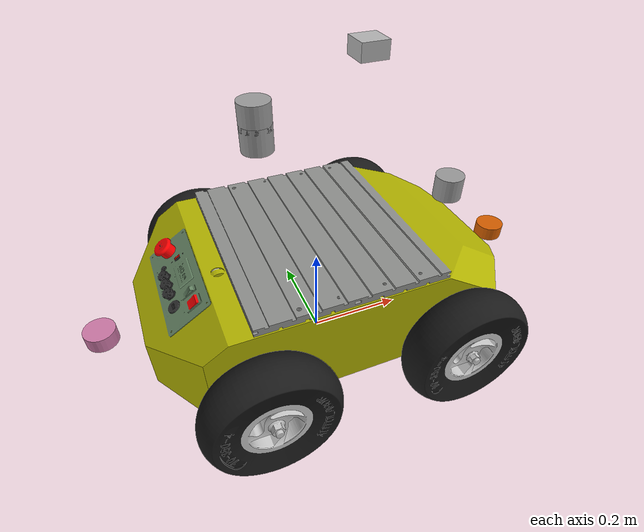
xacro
<?xml version="1.0"?>
	<!-- Revolute-Revolute Manipulator -->
	<robot name="autolabor_pro1" xmlns:xacro="http://www.ros.org/wiki/xacro">

	<!-- Base Link -->
	<link name="base_link">
		<collision>
			<origin xyz="0 0 0.18288" rpy="0 0 0"/>
			<geometry>
				<box size="0.7248 0.4302 0.195"/>
			</geometry>
		</collision>

		<visual>
			<origin xyz="0 0 0" rpy="0 0 0"/>
			<geometry>
				<mesh filename="package://autolabor_description/meshes/pro1_body_color.dae"/>
			</geometry>
		</visual>

	</link>

	<link name="left_front_wheel">
		<collision>
			<origin xyz="0 0 0" rpy="1.5708 0 0"/>
			<geometry>
				<cylinder length="0.0822" radius="0.127"/>
			</geometry>
		</collision>

		<visual>
			<origin xyz="0 0 0" rpy="0 0 0"/>
			<geometry>
				<mesh filename="package://autolabor_description/meshes/pro1_wheel_color.dae"/>
			</geometry>
		</visual>

		<inertial>
			<origin xyz="0 0 0" rpy="0 0 0"/>
			<mass value="1.5"/>
			<inertia ixx="0.013" ixy="0.0" ixz="0.0" iyy="0.0074" iyz="0.0" izz="0.0074"/>
		</inertial>
	</link>

	<link name="left_back_wheel">
		<collision>
			<origin xyz="0 0 0" rpy="1.5708 0 0"/>
			<geometry>
				<cylinder length="0.0822" radius="0.127"/>
			</geometry>
		</collision>

		<visual>
			<origin xyz="0 0 0" rpy="0 0 0"/>
			<geometry>
				<mesh filename="package://autolabor_description/meshes/pro1_wheel_color.dae"/>
			</geometry>
		</visual>

		<inertial>
			<origin xyz="0 0 0" rpy="0 0 0"/>
			<mass value="1.5"/>
			<inertia ixx="0.013" ixy="0.0" ixz="0.0" iyy="0.0074" iyz="0.0" izz="0.0074"/>
		</inertial>
	</link>

	<link name="right_front_wheel">
		<collision>
			<origin xyz="0 0 0" rpy="1.5708 0 0"/>
			<geometry>
				<cylinder length="0.0822" radius="0.127"/>
			</geometry>
		</collision>

		<visual>
			<origin xyz="0 0 0" rpy="0 0 3.1415926535897931"/>
			<geometry>
				<mesh filename="package://autolabor_description/meshes/pro1_wheel_color.dae"/>
			</geometry>
		</visual>

		<inertial>
			<origin xyz="0 0 0" rpy="0 0 3.1415926535897931"/>
			<mass value="1.5"/>
			<inertia ixx="0.013" ixy="0.0" ixz="0.0" iyy="0.0074" iyz="0.0" izz="0.0074"/>
		</inertial>
	</link>

	<link name="right_back_wheel">
		<collision>
			<origin xyz="0 0 0" rpy="1.5708 0 0"/>
			<geometry>
				<cylinder length="0.0822" radius="0.127"/>
			</geometry>
		</collision>

		<visual>
			<origin xyz="0 0 0" rpy="0 0 3.1415926535897931"/>
			<geometry>
				<mesh filename="package://autolabor_description/meshes/pro1_wheel_color.dae"/>
			</geometry>
		</visual>

		<inertial>
			<origin xyz="0 0 0" rpy="0 0 3.1415926535897931"/>
			<mass value="1.5"/>
			<inertia ixx="0.013" ixy="0.0" ixz="0.0" iyy="0.0074" iyz="0.0" izz="0.0074"/>
		</inertial>
	</link>

	<link name="lidar_front">
		<collision>
			<origin xyz="0 0 0" rpy="0 0 0"/>
			<geometry>
				<cylinder length="0.05" radius="0.03"/>
			</geometry>
		</collision>

		<visual>
			<origin xyz="0 0 0" rpy="0 0 0"/>
			<geometry>
				<cylinder length="0.03" radius="0.03"/>
			</geometry>
		</visual>

		<inertial>
			<origin xyz="0 0 0" rpy="0 0 0"/>
			<mass value="0.1"/>
			<inertia ixx="0.0074" ixy="0.0" ixz="0.0" iyy="0.0074" iyz="0.0" izz="0.013"/>
		</inertial>
	</link>

	<link name="lidar_back">
		<collision>
			<origin xyz="0 0 0" rpy="0 0 0"/>
			<geometry>
				<cylinder length="0.03" radius="0.03"/>
			</geometry>
		</collision>

		<visual>
			<origin xyz="0 0 0" rpy="0 0 0"/>
			<geometry>
				<cylinder length="0.03" radius="0.03"/>
			</geometry>
		</visual>

		<inertial>
			<origin xyz="0 0 0" rpy="0 0 0"/>
			<mass value="0.1"/>
			<inertia ixx="0.0074" ixy="0.0" ixz="0.0" iyy="0.0074" iyz="0.0" izz="0.013"/>
		</inertial>
	</link>

	<link name="tag">
		<collision>
			<origin xyz="0 0 0" rpy="0 0 0"/>
			<geometry>
				<box size="0.05 0.05 0.03"/>
			</geometry>
		</collision>

		<visual>
			<origin xyz="0 0 0" rpy="0 0 0"/>
			<geometry>
				<box size="0.05 0.05 0.03"/>
			</geometry>
		</visual>

		<inertial>
			<origin xyz="0 0 0" rpy="0 0 0"/>
			<mass value="0.1"/>
			<inertia ixx="0.0074" ixy="0.0" ixz="0.0" iyy="0.0074" iyz="0.0" izz="0.013"/>
		</inertial>
	</link>

	<joint name="joint_left_front" type="continuous">
		<parent link="base_link"/>
		<child link="left_front_wheel"/>
		<origin xyz="0.19649 0.2643 0.11913" rpy="0 0 0"/>
		<axis xyz="0 1 0"/>
		<dynamics damping="0.7"/>
	</joint>

	<joint name="joint_left_back" type="continuous">
		<parent link="base_link"/>
		<child link="left_back_wheel"/>
		<origin xyz="-0.18988 0.2643 0.11913" rpy="0 0 0"/>
		<axis xyz="0 1 0"/>
		<dynamics damping="0.7"/>
	</joint>

	<joint name="joint_right_front" type="continuous">
		<parent link="base_link"/>
		<child link="right_front_wheel"/>
		<origin xyz="0.19649 -0.2643 0.11913" rpy="0 0 0"/>
		<axis xyz="0 1 0"/>
		<dynamics damping="0.7"/>
	</joint>

	<joint name="joint_right_back" type="continuous">
		<parent link="base_link"/>
		<child link="right_back_wheel"/>
		<origin xyz="-0.18988 -0.2643 0.11913" rpy="0 0 0"/>
		<axis xyz="0 1 0"/>
		<dynamics damping="0.7"/>
	</joint>

	<joint name="laser_front_link_joint" type="fixed">
		<parent link="base_link"/>
		<child link="lidar_front"/>
		<origin xyz="0.4435 0.0 0.15" rpy="3.14 0.0 0.0"/>
	</joint>

	<joint name="laser_back_link_joint" type="fixed">
		<parent link="base_link"/>
		<child link="lidar_back"/>
		<origin xyz="-0.4355 0.0 0.15" rpy="3.14 0.0 3.14"/>
	</joint>

	<joint name="tag_link_joint" type="fixed">
		<parent link="base_link"/>
		<child link="tag"/>
		<origin xyz="0.09 0.0 0.60"/>
	</joint>

    <link name="imu_link">
        <visual>
            <origin xyz="0 0 0"/>
            <geometry>
                <cylinder length="0.05" radius="0.03"/>
            </geometry>
            <material name="gray"/>
        </visual>
    </link>
	<joint name="imu_link_joint" type="fixed">
		<parent link="base_link"/>
		<child link="imu_link"/>
		<origin xyz="-0.05 -0.13 0.00"/>
	</joint>

    <link name="camera_link">
        <visual>
            <origin xyz="0 0 0"/>
            <geometry>
                <cylinder length="0.05" radius="0.03"/>
            </geometry>
            <material name="gray"/>
        </visual>
    </link>
	<joint name="camera_joint" type="fixed">
		<parent link="base_link"/>
		<child link="camera_link"/>
		<origin xyz="0.30 0 0.30" rpy="0 0.0 0"/>
	</joint>
    <link name="rslidar">
        <visual>
            <origin xyz="0 0 0"/>
            <geometry>
                <cylinder length="0.05" radius="0.03"/>
            </geometry>
            <material name="gray"/>
        </visual>
    </link>
	<joint name="rslidar_joint" type="fixed">
		<parent link="base_link"/>
		<child link="rslidar"/>
		<origin xyz="0.30 0 0.30"/>
	</joint>
    <link name="camera_rgb_optical_frame">
        <visual>
            <origin xyz="0 0 0"/>
            <geometry>
                <cylinder length="0.05" radius="0.03"/>
            </geometry>
            <material name="gray"/>
        </visual>
    </link>
	<joint name="camera_rgb_optical_frame_joint" type="fixed">
		<parent link="base_link"/>
		<child link="camera_rgb_optical_frame"/>
		<origin xyz="0.0 0 0.0" rpy="-0.00556 1.7705 0.0"/>
	</joint>
	    <link name="velodyne">
        <visual>
            <origin xyz="0 0 0"/>
            <geometry>
                <cylinder length="0.05" radius="0.03"/>
            </geometry>
            <material name="gray"/>
        </visual>
    </link>
	<joint name="velodyne_joint" type="fixed">
		<parent link="base_link"/>
		<child link="velodyne"/>
		<origin xyz="-0.09 0.05 0.46"/>
	</joint>
	    <link name="blue">
        <visual>
            <origin xyz="0 0 0"/>
            <geometry>
                <cylinder length="0.05" radius="0.03"/>
            </geometry>
            <material name="gray"/>
        </visual>
    </link>
	<joint name="blue_joint" type="fixed">
		<parent link="base_link"/>
		<child link="blue"/>
		<origin xyz="-0.09 0.05 0.50"/>
	</joint>
</robot>
